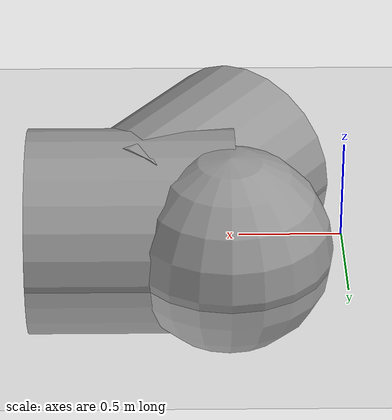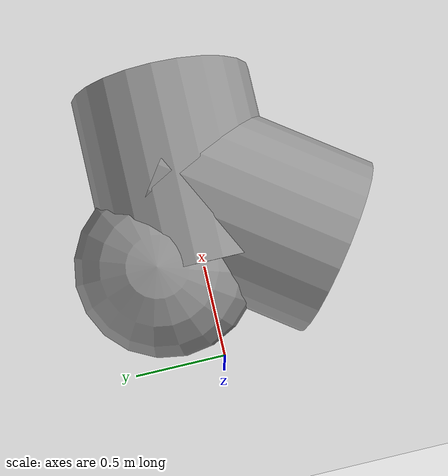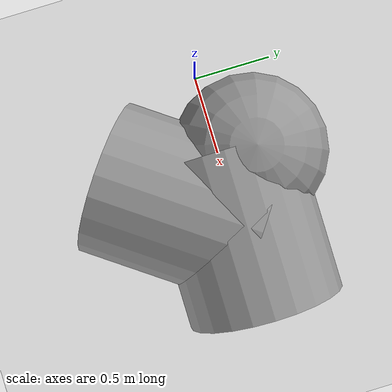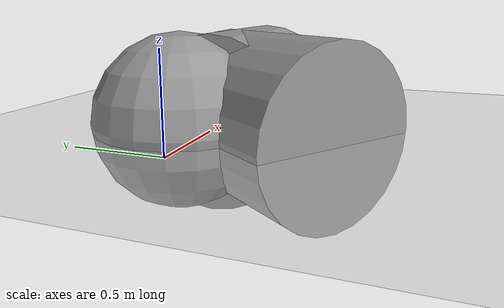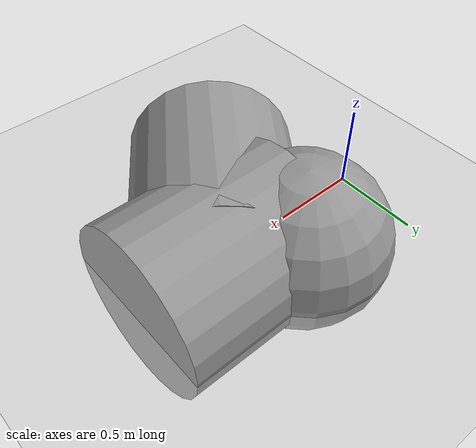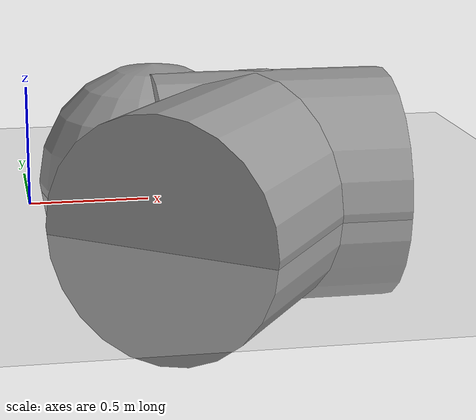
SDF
<sdf version="1.7">
 <world name="default">
  <light name="sun" type="directional">
   <pose>0 0 10 0 -0 0</pose>
   <diffuse>0.8 0.8 0.8 1</diffuse>
   <specular>0.2 0.2 0.2 1</specular>
   <attenuation>
    <range>1000</range>
    <constant>0.9</constant>
    <linear>0.01</linear>
    <quadratic>0.001</quadratic>
   </attenuation>
   <direction>-0.5 0.1 -0.9</direction>
   <spot><inner_angle>0</inner_angle><outer_angle>0</outer_angle><falloff>0</falloff></spot>
  </light>
  <model name="ground_plane">
   <static>1</static>
   <link name="link">
    <collision name="collision">
     <geometry><plane><normal>0 0 1</normal><size>100 100</size></plane></geometry>
     <surface>
      <contact><collide_bitmask>65535</collide_bitmask></contact>
      <friction><ode><mu>100</mu><mu2>50</mu2></ode></friction>
     </surface>
    </collision>
    <visual name="visual">
     <cast_shadows>0</cast_shadows>
     <geometry><plane><normal>0 0 1</normal><size>100 100</size></plane></geometry>
     <material>
      <script><uri>file://media/materials/scripts/gazebo.material</uri><name>Gazebo/Grey</name></script>
     </material>
    </visual>
   </link>
  </model>
  <gravity>0 0 -9.8</gravity>
  <magnetic_field>6e-06 2.3e-05 -4.2e-05</magnetic_field>
  <atmosphere type="adiabatic"/>
  <physics type="ode">
   <max_step_size>0.001</max_step_size>
   <real_time_factor>1</real_time_factor>
   <real_time_update_rate>1000</real_time_update_rate>
  </physics>
  <scene><ambient>0.4 0.4 0.4 1</ambient><background>0.7 0.7 0.7 1</background><shadows>1</shadows></scene>
  <spherical_coordinates>
   <surface_model>EARTH_WGS84</surface_model>
   <latitude_deg>0</latitude_deg>
   <longitude_deg>0</longitude_deg>
   <elevation>0</elevation>
   <heading_deg>0</heading_deg>
  </spherical_coordinates>
  <model name="unit_sphere">
   <pose>0.551539 0.19804 0.043311 0 -0 0</pose>
   <link name="link">
    <inertial>
     <mass>1</mass>
     <inertia><ixx>0.1</ixx><ixy>0</ixy><ixz>0</ixz><iyy>0.1</iyy><iyz>0</iyz><izz>0.1</izz></inertia>
    </inertial>
    <collision name="collision"><geometry><sphere><radius>0.5</radius></sphere></geometry></collision>
    <visual name="visual">
     <geometry><sphere><radius>0.5</radius></sphere></geometry>
     <material>
      <script><name>Gazebo/Grey</name><uri>file://media/materials/scripts/gazebo.material</uri></script>
     </material>
    </visual>
   </link>
  </model>
  <model name="coke_can">
   <link name="link">
    <inertial>
     <pose>0 0 0.06 0 -0 0</pose>
     <mass>0.39</mass>
     <inertia>
      <ixx>0.00055575</ixx>
      <ixy>0</ixy>
      <ixz>0</ixz>
      <iyy>0.00055575</iyy>
      <iyz>0</iyz>
      <izz>0.0001755</izz>
     </inertia>
    </inertial>
    <collision name="collision">
     <pose>0.003937 0.004724 -0.18 0 -0 0</pose>
     <geometry><mesh><uri>model://coke_can/meshes/coke_can.dae</uri></mesh></geometry>
     <surface>
      <friction><ode><mu>1</mu><mu2>1</mu2></ode></friction>
      <contact><ode><kp>1e+07</kp><kd>1</kd><min_depth>0.001</min_depth><max_vel>0.1</max_vel></ode></contact>
     </surface>
    </collision>
    <visual name="visual">
     <pose>0.003937 0.004724 -0.18 0 -0 0</pose>
     <geometry><mesh><uri>model://coke_can/meshes/coke_can.dae</uri></mesh></geometry>
    </visual>
   </link>
   <pose>1.28696 0.424943 -0.003472 -0.036723 0.008273 -0.00071</pose>
  </model>
  <model name="unit_cylinder">
   <pose>0.737914 -0.319339 0.030219 1.5708 -0 -0.624824</pose>
   <link name="link">
    <inertial>
     <mass>1</mass>
     <inertia><ixx>0.145833</ixx><ixy>0</ixy><ixz>0</ixz><iyy>0.145833</iyy><iyz>0</iyz><izz>0.125</izz></inertia>
    </inertial>
    <collision name="collision">
     <geometry><cylinder><radius>0.5</radius><length>1</length></cylinder></geometry>
    </collision>
    <visual name="visual">
     <geometry><cylinder><radius>0.5</radius><length>1</length></cylinder></geometry>
     <material>
      <script><name>Gazebo/Grey</name><uri>file://media/materials/scripts/gazebo.material</uri></script>
     </material>
    </visual>
   </link>
  </model>
  <model name="unit_cylinder_0">
   <pose>1.02359 0.011355 0.03239 3.14159 -1.57079 3.14159</pose>
   <link name="link">
    <inertial>
     <mass>1</mass>
     <inertia><ixx>0.145833</ixx><ixy>0</ixy><ixz>0</ixz><iyy>0.145833</iyy><iyz>0</iyz><izz>0.125</izz></inertia>
    </inertial>
    <collision name="collision">
     <geometry><cylinder><radius>0.5</radius><length>1</length></cylinder></geometry>
    </collision>
    <visual name="visual">
     <geometry><cylinder><radius>0.5</radius><length>1</length></cylinder></geometry>
     <material>
      <script><name>Gazebo/Grey</name><uri>file://media/materials/scripts/gazebo.material</uri></script>
     </material>
    </visual>
   </link>
  </model>
 </world>
</sdf>
